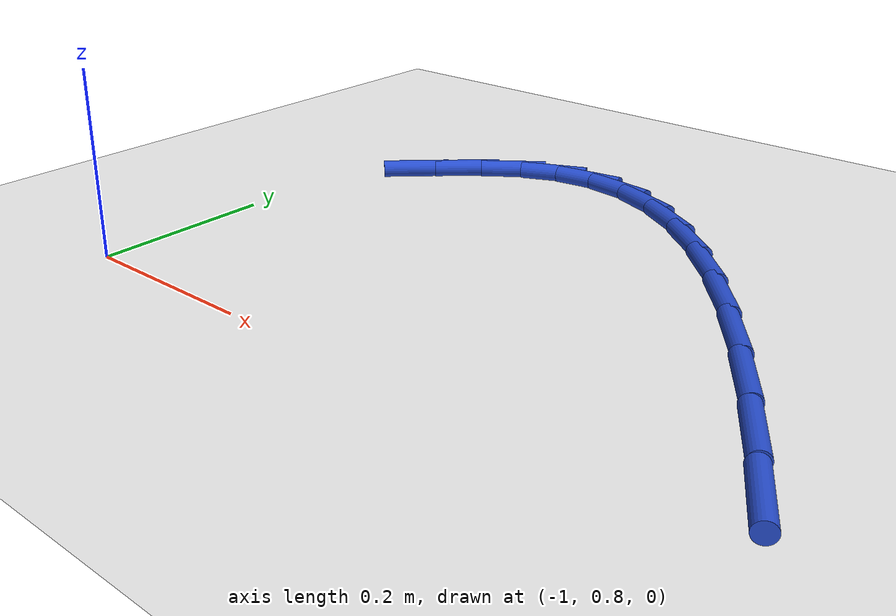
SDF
<sdf version="1.6">
 <world name="default">
  <model name="ground_plane">
   <static>1</static>
   <link name="link">
    <collision name="collision">
     <geometry><plane><normal>0 0 1</normal><size>100 100</size></plane></geometry>
     <surface><friction><ode><mu>100</mu><mu2>50</mu2></ode></friction></surface>
    </collision>
    <visual name="visual">
     <cast_shadows>0</cast_shadows>
     <geometry><plane><normal>0 0 1</normal><size>100 100</size></plane></geometry>
     <material>
      <script><uri>file://media/materials/scripts/gazebo.material</uri><name>Gazebo/WhiteGlow</name></script>
     </material>
    </visual>
   </link>
  </model>
  <model name="line">
   <link name="link_13">
    <pose>-0.29684400399638555 0.8476506069347173 0.01 0 1.57 -1.0699758413520342</pose>
    <collision name="collision">
     <geometry><cylinder><radius>0.01</radius><length>0.08</length></cylinder></geometry>
    </collision>
    <visual name="visual">
     <material>
      <script><name>Gazebo/Blue</name><uri>file://media/materials/scripts/gazebo.material</uri></script>
     </material>
     <geometry><cylinder><radius>0.01</radius><length>0.08</length></cylinder></geometry>
    </visual>
   </link>
   <link name="link_14">
    <pose>-0.3364340915002793 0.919978664210425 0.01 0 1.57 -1.037225696770762</pose>
    <collision name="collision">
     <geometry><cylinder><radius>0.01</radius><length>0.08</length></cylinder></geometry>
    </collision>
    <visual name="visual">
     <material>
      <script><name>Gazebo/Blue</name><uri>file://media/materials/scripts/gazebo.material</uri></script>
     </material>
     <geometry><cylinder><radius>0.01</radius><length>0.08</length></cylinder></geometry>
    </visual>
   </link>
   <link name="link_15">
    <pose>-0.3775029442677451 0.989501633870445 0.01 0 1.57 -0.9971209764654593</pose>
    <collision name="collision">
     <geometry><cylinder><radius>0.01</radius><length>0.08</length></cylinder></geometry>
    </collision>
    <visual name="visual">
     <material>
      <script><name>Gazebo/Blue</name><uri>file://media/materials/scripts/gazebo.material</uri></script>
     </material>
     <geometry><cylinder><radius>0.01</radius><length>0.08</length></cylinder></geometry>
    </visual>
   </link>
   <link name="link_16">
    <pose>-0.41987662708814566 1.0550787034879372 0.01 0 1.57 -0.9473012941923047</pose>
    <collision name="collision">
     <geometry><cylinder><radius>0.01</radius><length>0.08</length></cylinder></geometry>
    </collision>
    <visual name="visual">
     <material>
      <script><name>Gazebo/Blue</name><uri>file://media/materials/scripts/gazebo.material</uri></script>
     </material>
     <geometry><cylinder><radius>0.01</radius><length>0.08</length></cylinder></geometry>
    </visual>
   </link>
   <link name="link_17">
    <pose>-0.4633812047508435 1.1155690606360598 0.01 0 1.57 -0.8843532875555665</pose>
    <collision name="collision">
     <geometry><cylinder><radius>0.01</radius><length>0.08</length></cylinder></geometry>
    </collision>
    <visual name="visual">
     <material>
      <script><name>Gazebo/Blue</name><uri>file://media/materials/scripts/gazebo.material</uri></script>
     </material>
     <geometry><cylinder><radius>0.01</radius><length>0.08</length></cylinder></geometry>
    </visual>
   </link>
   <link name="link_18">
    <pose>-0.5078427420452015 1.1698318928879732 0.01 0 1.57 -0.8033032402612422</pose>
    <collision name="collision">
     <geometry><cylinder><radius>0.01</radius><length>0.08</length></cylinder></geometry>
    </collision>
    <visual name="visual">
     <material>
      <script><name>Gazebo/Blue</name><uri>file://media/materials/scripts/gazebo.material</uri></script>
     </material>
     <geometry><cylinder><radius>0.01</radius><length>0.08</length></cylinder></geometry>
    </visual>
   </link>
   <link name="link_19">
    <pose>-0.5530873037605823 1.2167263878168357 0.01 0 1.57 -0.6969731927274648</pose>
    <collision name="collision">
     <geometry><cylinder><radius>0.01</radius><length>0.08</length></cylinder></geometry>
    </collision>
    <visual name="visual">
     <material>
      <script><name>Gazebo/Blue</name><uri>file://media/materials/scripts/gazebo.material</uri></script>
     </material>
     <geometry><cylinder><radius>0.01</radius><length>0.08</length></cylinder></geometry>
    </visual>
   </link>
   <link name="link_20">
    <pose>-0.5989409546863486 1.2551117329958075 0.01 0 1.57 -0.5555623616183681</pose>
    <collision name="collision">
     <geometry><cylinder><radius>0.01</radius><length>0.08</length></cylinder></geometry>
    </collision>
    <visual name="visual">
     <material>
      <script><name>Gazebo/Blue</name><uri>file://media/materials/scripts/gazebo.material</uri></script>
     </material>
     <geometry><cylinder><radius>0.01</radius><length>0.08</length></cylinder></geometry>
    </visual>
   </link>
   <link name="link_21">
    <pose>-0.6452297596118629 1.283847115998047 0.01 0 1.57 -0.3679362612543533</pose>
    <collision name="collision">
     <geometry><cylinder><radius>0.01</radius><length>0.08</length></cylinder></geometry>
    </collision>
    <visual name="visual">
     <material>
      <script><name>Gazebo/Blue</name><uri>file://media/materials/scripts/gazebo.material</uri></script>
     </material>
     <geometry><cylinder><radius>0.01</radius><length>0.08</length></cylinder></geometry>
    </visual>
   </link>
   <link name="link_22">
    <pose>-0.6917797833264883 1.3017917243967143 0.01 0 1.57 -0.128224189787325</pose>
    <collision name="collision">
     <geometry><cylinder><radius>0.01</radius><length>0.08</length></cylinder></geometry>
    </collision>
    <visual name="visual">
     <material>
      <script><name>Gazebo/Blue</name><uri>file://media/materials/scripts/gazebo.material</uri></script>
     </material>
     <geometry><cylinder><radius>0.01</radius><length>0.08</length></cylinder></geometry>
    </visual>
   </link>
   <link name="link_23">
    <pose>-0.7384170906195869 1.3078047457649684 0.01 0 1.57 0.1505026419815725</pose>
    <collision name="collision">
     <geometry><cylinder><radius>0.01</radius><length>0.08</length></cylinder></geometry>
    </collision>
    <visual name="visual">
     <material>
      <script><name>Gazebo/Blue</name><uri>file://media/materials/scripts/gazebo.material</uri></script>
     </material>
     <geometry><cylinder><radius>0.01</radius><length>0.08</length></cylinder></geometry>
    </visual>
   </link>
   <link name="link_24">
    <pose>-0.7849677462805218 1.3007453676759677 0.01 0 1.57 0.4307039447864425</pose>
    <collision name="collision">
     <geometry><cylinder><radius>0.01</radius><length>0.08</length></cylinder></geometry>
    </collision>
    <visual name="visual">
     <material>
      <script><name>Gazebo/Blue</name><uri>file://media/materials/scripts/gazebo.material</uri></script>
     </material>
     <geometry><cylinder><radius>0.01</radius><length>0.08</length></cylinder></geometry>
    </visual>
   </link>
   <link name="link_25">
    <pose>-0.8312582985825342 1.2794760945474075 0.01 0 1.57 0.6474885942733607</pose>
    <collision name="collision">
     <geometry><cylinder><radius>0.01</radius><length>0.08</length></cylinder></geometry>
    </collision>
    <visual name="visual">
     <material>
      <script><name>Gazebo/Blue</name><uri>file://media/materials/scripts/gazebo.material</uri></script>
     </material>
     <geometry><cylinder><radius>0.01</radius><length>0.08</length></cylinder></geometry>
    </visual>
   </link>
   <link name="link_26">
    <pose>-0.8773696560965424 1.244604418790547 0.01 0 1.57 0.7473808843978439</pose>
    <collision name="collision">
     <geometry><cylinder><radius>0.01</radius><length>0.08</length></cylinder></geometry>
    </collision>
    <visual name="visual">
     <material>
      <script><name>Gazebo/Blue</name><uri>file://media/materials/scripts/gazebo.material</uri></script>
     </material>
     <geometry><cylinder><radius>0.01</radius><length>0.08</length></cylinder></geometry>
    </visual>
   </link>
   <link name="link_27">
    <pose>-0.9240537839183703 1.2013414820089794 0.01 0 1.57 0.7595485487825974</pose>
    <collision name="collision">
     <geometry><cylinder><radius>0.01</radius><length>0.08</length></cylinder></geometry>
    </collision>
    <visual name="visual">
     <material>
      <script><name>Gazebo/Blue</name><uri>file://media/materials/scripts/gazebo.material</uri></script>
     </material>
     <geometry><cylinder><radius>0.01</radius><length>0.08</length></cylinder></geometry>
    </visual>
   </link>
  </model>
 </world>
</sdf>
